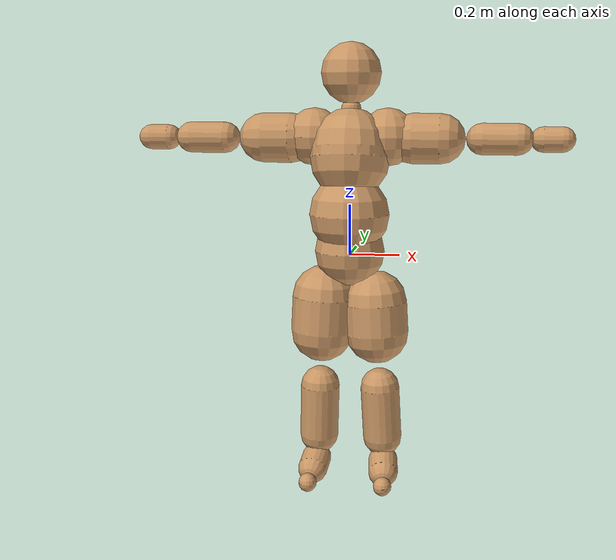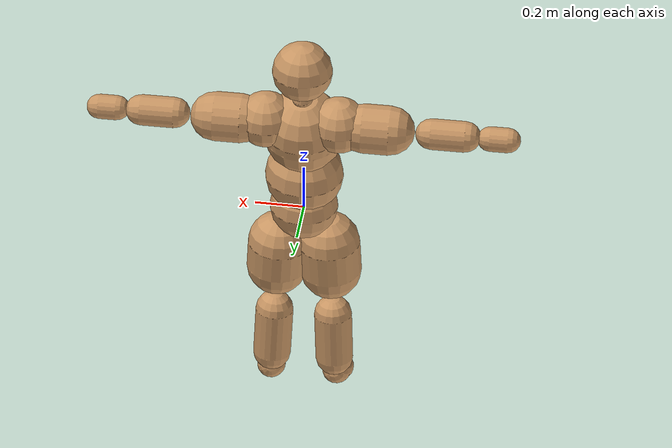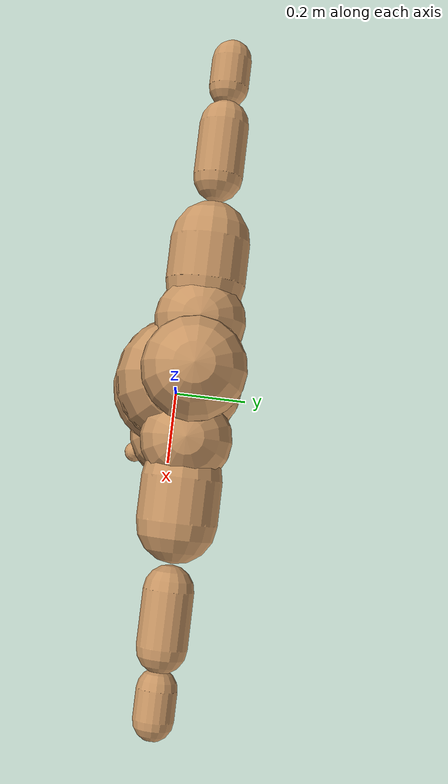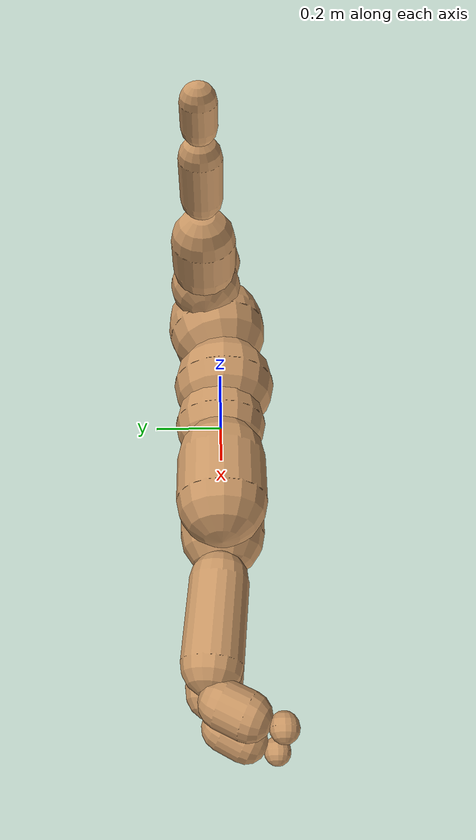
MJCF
<mujoco model="samurai">
  <compiler coordinate="local"/>
  <default>
    <joint damping="0.0" armature="0.01" stiffness="0.0" limited="true"/>
    <geom conaffinity="1" condim="3" contype="7" margin="0.001" rgba="0.8 0.6 .4 1"/>
  </default>
  <asset>
    <texture type="skybox" builtin="gradient" rgb1=".4 .5 .6" rgb2="0 0 0" width="100" height="100"/>
    <texture builtin="flat" height="1278" mark="cross" markrgb="1 1 1" name="texgeom" random="0.01" rgb1="0.8 0.6 0.4" rgb2="0.8 0.6 0.4" type="cube" width="127"/>
    <texture builtin="checker" height="100" name="texplane" rgb1="0 0 0" rgb2="0.8 0.8 0.8" type="2d" width="100"/>
    <material name="MatPlane" reflectance="0.5" shininess="1" specular="1" texrepeat="60 60" texture="texplane"/>
    <material name="geom" texture="texgeom" texuniform="true"/>
  </asset>
  <worldbody>
    <light cutoff="100" diffuse="1 1 1" dir="-0 0 -1.3" directional="true" exponent="1" pos="0 0 1.3" specular=".1 .1 .1"/>
    <body name='Hips' pos='0.0000 0.0000 0.0000'>
      <freejoint name='Hips'/>
      <geom type='capsule' size='0.1400' fromto='0.0000 0.0000 0.0140 0.0000 0.0000 0.0160' density='522' material='geom'/>
        <body name='Spine1' pos='0.0000 -0.0101 0.0998'>
          <joint name='Spine1_x' type='hinge' pos='0 0 0' axis='1.0000 0.0000 0.0000' stiffness='800' damping='80' armature='0.02' range='-48.0000 69.0000'/>
          <joint name='Spine1_y' type='hinge' pos='0 0 0' axis='0.0000 1.0000 0.0000' stiffness='800' damping='80' armature='0.02' range='-43.0000 44.0000'/>
          <joint name='Spine1_z' type='hinge' pos='0 0 0' axis='0.0000 0.0000 1.0000' stiffness='800' damping='80' armature='0.02' range='-43.0000 42.0000'/>
          <geom type='capsule' size='0.1600' fromto='0.0000 -0.0016 0.0633 0.0000 -0.0016 0.0653' density='522' material='geom'/>
            <body name='Spine2' pos='0.0000 -0.0038 0.1514'>
              <joint name='Spine2_x' type='hinge' pos='0 0 0' axis='1.0000 0.0000 0.0000' stiffness='800' damping='80' armature='0.02' range='-48.0000 64.0000'/>
              <joint name='Spine2_y' type='hinge' pos='0 0 0' axis='0.0000 1.0000 0.0000' stiffness='800' damping='80' armature='0.02' range='-44.0000 44.0000'/>
              <joint name='Spine2_z' type='hinge' pos='0 0 0' axis='0.0000 0.0000 1.0000' stiffness='800' damping='80' armature='0.02' range='-52.0000 52.0000'/>
              <geom type='capsule' size='0.1600' fromto='0.0000 0.0220 0.1321 0.0000 0.0283 0.1700' density='522' material='geom'/>
                <body name='Chest' pos='0.0000 0.0308 0.1850'>
                  <joint name='Chest_x' type='hinge' pos='0 0 0' axis='1.0000 0.0000 0.0000' stiffness='800' damping='80' armature='0.02' range='-37.0000 77.0000'/>
                  <joint name='Chest_y' type='hinge' pos='0 0 0' axis='0.0000 1.0000 0.0000' stiffness='800' damping='80' armature='0.02' range='-48.0000 52.0000'/>
                  <joint name='Chest_z' type='hinge' pos='0 0 0' axis='0.0000 0.0000 1.0000' stiffness='800' damping='80' armature='0.02' range='-54.0000 52.0000'/>
                  <geom type='capsule' size='0.1000' fromto='0.0000 0.0106 0.0345 0.0000 0.0106 0.0365' density='522' material='geom'/>
                    <body name='Neck1' pos='-0.0000 0.0202 0.1129'>
                      <joint name='Neck1_x' type='hinge' pos='0 0 0' axis='1.0000 0.0000 0.0000' stiffness='200' damping='20' armature='0.02' range='-84.0000 87.0000'/>
                      <joint name='Neck1_y' type='hinge' pos='0 0 0' axis='0.0000 1.0000 0.0000' stiffness='200' damping='20' armature='0.02' range='-67.0000 66.0000'/>
                      <joint name='Neck1_z' type='hinge' pos='0 0 0' axis='0.0000 0.0000 1.0000' stiffness='200' damping='20' armature='0.02' range='-65.0000 66.0000'/>
                      <geom type='capsule' size='0.0400' fromto='0.0000 0.0051 0.0231 0.0000 0.0051 0.0251' density='522' material='geom'/>
                        <body name='Neck2' pos='0.0000 0.0103 0.0482'>
                          <joint name='Neck2_x' type='hinge' pos='0 0 0' axis='1.0000 0.0000 0.0000' stiffness='200' damping='20' armature='0.02' range='-37.0000 33.0000'/>
                          <joint name='Neck2_y' type='hinge' pos='0 0 0' axis='0.0000 1.0000 0.0000' stiffness='200' damping='20' armature='0.02' range='-44.0000 45.0000'/>
                          <joint name='Neck2_z' type='hinge' pos='0 0 0' axis='0.0000 0.0000 1.0000' stiffness='200' damping='20' armature='0.02' range='-69.0000 69.0000'/>
                          <geom type='capsule' size='0.0400' fromto='-0.0000 -0.0013 0.0227 -0.0000 -0.0013 0.0247' density='522' material='geom'/>
                            <body name='Head' pos='-0.0000 -0.0026 0.0473'>
                              <joint name='Head_x' type='hinge' pos='0 0 0' axis='1.0000 0.0000 0.0000' stiffness='200' damping='20' armature='0.02' range='-99.0000 73.0000'/>
                              <joint name='Head_y' type='hinge' pos='0 0 0' axis='0.0000 1.0000 0.0000' stiffness='200' damping='20' armature='0.02' range='-55.0000 55.0000'/>
                              <joint name='Head_z' type='hinge' pos='0 0 0' axis='0.0000 0.0000 1.0000' stiffness='200' damping='20' armature='0.02' range='-99.0000 100.0000'/>
                              <geom type='capsule' size='0.1200' fromto='0.0000 -0.0000 0.0690 0.0000 -0.0000 0.0710' density='522' material='geom'/>
                            </body>
                        </body>
                    </body>
                    <body name='RightShoulder' pos='-0.0138 0.0219 0.0502'>
                      <joint name='RightShoulder_x' type='hinge' pos='0 0 0' axis='1.0000 0.0000 0.0000' stiffness='400' damping='40' armature='0.02' range='-43.0000 64.0000'/>
                      <joint name='RightShoulder_y' type='hinge' pos='0 0 0' axis='0.0000 1.0000 0.0000' stiffness='400' damping='40' armature='0.02' range='-72.0000 87.0000'/>
                      <joint name='RightShoulder_z' type='hinge' pos='0 0 0' axis='0.0000 0.0000 1.0000' stiffness='400' damping='40' armature='0.02' range='-62.0000 79.0000'/>
                      <geom type='capsule' size='0.1137' fromto='-0.1326 0.0062 -0.0215 -0.1326 0.0062 -0.0195' density='522' material='geom'/>
                        <body name='RightArm' pos='-0.1697 0.0079 -0.0262'>
                          <joint name='RightArm_x' type='hinge' pos='0 0 0' axis='1.0000 0.0000 0.0000' stiffness='400' damping='40' armature='0.02' range='-134.0000 108.0000'/>
                          <joint name='RightArm_y' type='hinge' pos='0 0 0' axis='0.0000 1.0000 0.0000' stiffness='400' damping='40' armature='0.02' range='-145.0000 92.0000'/>
                          <joint name='RightArm_z' type='hinge' pos='0 0 0' axis='0.0000 0.0000 1.0000' stiffness='400' damping='40' armature='0.02' range='-93.0000 164.0000'/>
                          <geom type='capsule' size='0.0994' fromto='-0.0592 0.0000 0.0000 -0.1686 0.0000 0.0000' density='522' material='geom'/>
                            <body name='RightForeArm' pos='-0.2680 0.0000 0.0000'>
                              <joint name='RightForeArm_x' type='hinge' pos='0 0 0' axis='1.0000 0.0000 0.0000' stiffness='300' damping='30' armature='0.02' range='-34.0000 40.0000'/>
                              <joint name='RightForeArm_y' type='hinge' pos='0 0 0' axis='0.0000 1.0000 0.0000' stiffness='300' damping='80' armature='0.02' range='-48.0000 65.0000'/>
                              <joint name='RightForeArm_z' type='hinge' pos='0 0 0' axis='0.0000 0.0000 1.0000' stiffness='300' damping='30' armature='0.02' range='-61.0000 178.0000'/>
                              <geom type='capsule' size='0.0622' fromto='-0.0636 0.0000 -0.0000 -0.2007 0.0000 -0.0000' density='522' material='geom'/>
                                <body name='RightHand' pos='-0.2630 0.0000 -0.0000'>
                                  <joint name='RightHand_x' type='hinge' pos='0 0 0' axis='1.0000 0.0000 0.0000' stiffness='200' damping='20' armature='0.02' range='-178.0000 152.0000'/>
                                  <joint name='RightHand_y' type='hinge' pos='0 0 0' axis='0.0000 1.0000 0.0000' stiffness='200' damping='20' armature='0.02' range='-73.0000 129.0000'/>
                                  <joint name='RightHand_z' type='hinge' pos='0 0 0' axis='0.0000 0.0000 1.0000' stiffness='200' damping='20' armature='0.02' range='-91.0000 97.0000'/>
                                  <geom type='capsule' size='0.0500' fromto='-0.0351 0.0000 0.0000 -0.1080 0.0000 0.0000' density='522' material='geom'/>
                                </body>
                            </body>
                        </body>
                    </body>
                    <body name='LeftShoulder' pos='0.0138 0.0219 0.0502'>
                      <joint name='LeftShoulder_x' type='hinge' pos='0 0 0' axis='-1.0000 0.0000 0.0000' stiffness='400' damping='40' armature='0.02' range='-44.0000 63.0000'/>
                      <joint name='LeftShoulder_y' type='hinge' pos='0 0 0' axis='0.0000 1.0000 0.0000' stiffness='400' damping='40' armature='0.02' range='-87.0000 72.0000'/>
                      <joint name='LeftShoulder_z' type='hinge' pos='0 0 0' axis='0.0000 0.0000 1.0000' stiffness='400' damping='40' armature='0.02' range='-75.0000 62.0000'/>
                      <geom type='capsule' size='0.1137' fromto='0.1328 0.0062 -0.0215 0.1328 0.0062 -0.0195' density='522' material='geom'/>
                        <body name='LeftArm' pos='0.1697 0.0079 -0.0262'>
                          <joint name='LeftArm_x' type='hinge' pos='0 0 0' axis='-1.0000 0.0000 0.0000' stiffness='400' damping='40' armature='0.02' range='-133.0000 107.0000'/>
                          <joint name='LeftArm_y' type='hinge' pos='0 0 0' axis='0.0000 1.0000 0.0000' stiffness='400' damping='40' armature='0.02' range='-92.0000 138.0000'/>
                          <joint name='LeftArm_z' type='hinge' pos='0 0 0' axis='0.0000 0.0000 1.0000' stiffness='400' damping='40' armature='0.02' range='-164.0000 95.0000'/>
                          <geom type='capsule' size='0.0996' fromto='0.0594 0.0000 0.0000 0.1684 0.0000 0.0000' density='522' material='geom'/>
                            <body name='LeftForeArm' pos='0.2680 0.0000 0.0000'>
                              <joint name='LeftForeArm_x' type='hinge' pos='0 0 0' axis='-1.0000 0.0000 0.0000' stiffness='300' damping='30' armature='0.02' range='-34.0000 40.0000'/>
                              <joint name='LeftForeArm_y' type='hinge' pos='0 0 0' axis='0.0000 1.0000 0.0000' stiffness='300' damping='30' armature='0.02' range='-63.0000 49.0000'/>
                              <joint name='LeftForeArm_z' type='hinge' pos='0 0 0' axis='0.0000 0.0000 1.0000' stiffness='300' damping='30' armature='0.02' range='-178.0000 62.0000'/>
                              <geom type='capsule' size='0.0622' fromto='0.0636 0.0000 -0.0000 0.2008 0.0000 -0.0000' density='522' material='geom'/>
                                <body name='LeftHand' pos='0.2630 0.0000 -0.0000'>
                                  <joint name='LeftHand_x' type='hinge' pos='0 0 0' axis='-1.0000 0.0000 0.0000' stiffness='200' damping='20' armature='0.02' range='-138.0000 115.0000'/>
                                  <joint name='LeftHand_y' type='hinge' pos='0 0 0' axis='0.0000 1.0000 0.0000' stiffness='200' damping='20' armature='0.02' range='-129.0000 72.0000'/>
                                  <joint name='LeftHand_z' type='hinge' pos='0 0 0' axis='0.0000 0.0000 1.0000' stiffness='200' damping='20' armature='0.02' range='-85.0000 75.0000'/>
                                  <geom type='capsule' size='0.0500' fromto='0.0351 0.0000 -0.0000 0.1080 0.0000 -0.0000' density='522' material='geom'/>
                                </body>
                            </body>
                        </body>
                    </body>
                </body>
            </body>
        </body>
        <body name='RightLeg' pos='-0.0962 -0.0026 -0.0227'>
          <joint name='RightLeg_x' type='hinge' pos='0 0 0' axis='1.0000 0.0000 0.0000' stiffness='500' damping='50' armature='0.02' range='-174.0000 84.0000'/>
          <joint name='RightLeg_y' type='hinge' pos='0 0 0' axis='0.0000 1.0000 0.0000' stiffness='500' damping='50' armature='0.02' range='-91.0000 98.0000'/>
          <joint name='RightLeg_z' type='hinge' pos='0 0 0' axis='0.0000 0.0000 1.0000' stiffness='500' damping='50' armature='0.02' range='-96.0000 80.0000'/>
          <geom type='capsule' size='0.1277' fromto='-0.0082 -0.0002 -0.1503 -0.0158 -0.0004 -0.2901' density='522' material='geom'/>
            <body name='RightShin' pos='-0.0228 -0.0005 -0.4176'>
              <joint name='RightShin_x' type='hinge' pos='0 0 0' axis='1.0000 0.0000 0.0000' stiffness='500' damping='50' armature='0.02' range='-67.0000 178.0000'/>
              <joint name='RightShin_y' type='hinge' pos='0 0 0' axis='0.0000 1.0000 0.0000' stiffness='500' damping='50' armature='0.02' range='-45.0000 37.0000'/>
              <joint name='RightShin_z' type='hinge' pos='0 0 0' axis='0.0000 0.0000 1.0000' stiffness='500' damping='50' armature='0.02' range='-40.0000 34.0000'/>
              <geom type='capsule' size='0.0790' fromto='-0.0046 0.0093 -0.1095 -0.0137 0.0279 -0.3269' density='522' material='geom'/>
                <body name='RightFoot' pos='-0.0169 0.0346 -0.4055'>
                  <joint name='RightFoot_x' type='hinge' pos='0 0 0' axis='1.0000 0.0000 0.0000' stiffness='100' damping='20' armature='0.02' range='-86.0000 111.0000'/>
                  <joint name='RightFoot_y' type='hinge' pos='0 0 0' axis='0.0000 1.0000 0.0000' stiffness='100' damping='20' armature='0.02' range='-85.0000 71.0000'/>
                  <joint name='RightFoot_z' type='hinge' pos='0 0 0' axis='0.0000 0.0000 1.0000' stiffness='100' damping='20' armature='0.02' range='-95.0000 85.0000'/>
                  <geom type='capsule' size='0.0600' fromto='-0.0036 -0.0321 -0.0161 -0.0103 -0.0910 -0.0456' density='522' material='geom'/>
                    <body name='RightToeBase' pos='-0.0163 -0.1440 -0.0722'>
                      <joint name='RightToeBase_x' type='hinge' pos='0 0 0' axis='1.0000 0.0000 0.0000' stiffness='60' damping='12' armature='0.02' range='-100.0000 49.0000'/>
                      <joint name='RightToeBase_y' type='hinge' pos='0 0 0' axis='0.0000 1.0000 0.0000' stiffness='60' damping='12' armature='0.02' range='-43.0000 40.0000'/>
                      <joint name='RightToeBase_z' type='hinge' pos='0 0 0' axis='0.0000 0.0000 1.0000' stiffness='60' damping='12' armature='0.02' range='-37.0000 40.0000'/>
                      <geom type='capsule' size='0.0366' fromto='-0.0000 -0.0306 -0.0010 -0.0000 -0.0306 0.0010' density='522' material='geom'/>
                    </body>
                </body>
            </body>
        </body>
        <body name='LeftLeg' pos='0.0962 -0.0025 -0.0227'>
          <joint name='LeftLeg_x' type='hinge' pos='0 0 0' axis='-1.0000 0.0000 0.0000' stiffness='500' damping='50' armature='0.02' range='-174.0000 85.0000'/>
          <joint name='LeftLeg_y' type='hinge' pos='0 0 0' axis='0.0000 1.0000 0.0000' stiffness='500' damping='50' armature='0.02' range='-98.0000 83.0000'/>
          <joint name='LeftLeg_z' type='hinge' pos='0 0 0' axis='0.0000 0.0000 1.0000' stiffness='500' damping='50' armature='0.02' range='-79.0000 101.0000'/>
          <geom type='capsule' size='0.1273' fromto='0.0092 -0.0002 -0.1681 0.0159 -0.0004 -0.2905' density='522' material='geom'/>
            <body name='LeftShin' pos='0.0228 -0.0005 -0.4176'>
              <joint name='LeftShin_x' type='hinge' pos='0 0 0' axis='-1.0000 0.0000 0.0000' stiffness='500' damping='50' armature='0.02' range='-66.0000 178.0000'/>
              <joint name='LeftShin_y' type='hinge' pos='0 0 0' axis='0.0000 1.0000 0.0000' stiffness='500' damping='50' armature='0.02' range='-37.0000 45.0000'/>
              <joint name='LeftShin_z' type='hinge' pos='0 0 0' axis='0.0000 0.0000 1.0000' stiffness='500' damping='50' armature='0.02' range='-34.0000 40.0000'/>
              <geom type='capsule' size='0.0789' fromto='0.0046 0.0093 -0.1090 0.0137 0.0279 -0.3270' density='522' material='geom'/>
                <body name='LeftFoot' pos='0.0169 0.0346 -0.4055'>
                  <joint name='LeftFoot_x' type='hinge' pos='0 0 0' axis='-1.0000 0.0000 0.0000' stiffness='100' damping='20' armature='0.02' range='-85.0000 111.0000'/>
                  <joint name='LeftFoot_y' type='hinge' pos='0 0 0' axis='0.0000 1.0000 0.0000' stiffness='100' damping='20' armature='0.02' range='-74.0000 86.0000'/>
                  <joint name='LeftFoot_z' type='hinge' pos='0 0 0' axis='0.0000 0.0000 1.0000' stiffness='100' damping='20' armature='0.02' range='-90.0000 95.0000'/>
                  <geom type='capsule' size='0.0600' fromto='0.0036 -0.0322 -0.0162 0.0103 -0.0911 -0.0457' density='522' material='geom'/>
                    <body name='LeftToeBase' pos='0.0163 -0.1440 -0.0722'>
                      <joint name='LeftToeBase_x' type='hinge' pos='0 0 0' axis='-1.0000 0.0000 0.0000' stiffness='60' damping='12' armature='0.02' range='-100.0000 49.0000'/>
                      <joint name='LeftToeBase_y' type='hinge' pos='0 0 0' axis='0.0000 1.0000 0.0000' stiffness='60' damping='12' armature='0.02' range='-40.0000 43.0000'/>
                      <joint name='LeftToeBase_z' type='hinge' pos='0 0 0' axis='0.0000 0.0000 1.0000' stiffness='60' damping='12' armature='0.02' range='-40.0000 37.0000'/>
                      <geom type='capsule' size='0.0366' fromto='-0.0000 -0.0307 -0.0010 -0.0000 -0.0307 0.0010' density='522' material='geom'/>
                    </body>
                </body>
            </body>
        </body>
    </body>
  </worldbody>
  <actuator>
      <motor name='Spine1_x' joint='Spine1_x' gear='200'/>
      <motor name='Spine1_y' joint='Spine1_y' gear='200'/>
      <motor name='Spine1_z' joint='Spine1_z' gear='200'/>
      <motor name='Spine2_x' joint='Spine2_x' gear='200'/>
      <motor name='Spine2_y' joint='Spine2_y' gear='200'/>
      <motor name='Spine2_z' joint='Spine2_z' gear='200'/>
      <motor name='Chest_x' joint='Chest_x' gear='200'/>
      <motor name='Chest_y' joint='Chest_y' gear='200'/>
      <motor name='Chest_z' joint='Chest_z' gear='200'/>
      <motor name='Neck1_x' joint='Neck1_x' gear='100'/>
      <motor name='Neck1_y' joint='Neck1_y' gear='100'/>
      <motor name='Neck1_z' joint='Neck1_z' gear='100'/>
      <motor name='Neck2_x' joint='Neck2_x' gear='100'/>
      <motor name='Neck2_y' joint='Neck2_y' gear='100'/>
      <motor name='Neck2_z' joint='Neck2_z' gear='100'/>
      <motor name='Head_x' joint='Head_x' gear='100'/>
      <motor name='Head_y' joint='Head_y' gear='100'/>
      <motor name='Head_z' joint='Head_z' gear='100'/>
      <motor name='RightShoulder_x' joint='RightShoulder_x' gear='200'/>
      <motor name='RightShoulder_y' joint='RightShoulder_y' gear='200'/>
      <motor name='RightShoulder_z' joint='RightShoulder_z' gear='200'/>
      <motor name='RightArm_x' joint='RightArm_x' gear='200'/>
      <motor name='RightArm_y' joint='RightArm_y' gear='200'/>
      <motor name='RightArm_z' joint='RightArm_z' gear='200'/>
      <motor name='RightForeArm_x' joint='RightForeArm_x' gear='100'/>
      <motor name='RightForeArm_y' joint='RightForeArm_y' gear='100'/>
      <motor name='RightForeArm_z' joint='RightForeArm_z' gear='100'/>
      <motor name='RightHand_x' joint='RightHand_x' gear='70'/>
      <motor name='RightHand_y' joint='RightHand_y' gear='70'/>
      <motor name='RightHand_z' joint='RightHand_z' gear='70'/>
      <motor name='LeftShoulder_x' joint='LeftShoulder_x' gear='200'/>
      <motor name='LeftShoulder_y' joint='LeftShoulder_y' gear='200'/>
      <motor name='LeftShoulder_z' joint='LeftShoulder_z' gear='200'/>
      <motor name='LeftArm_x' joint='LeftArm_x' gear='200'/>
      <motor name='LeftArm_y' joint='LeftArm_y' gear='200'/>
      <motor name='LeftArm_z' joint='LeftArm_z' gear='200'/>
      <motor name='LeftForeArm_x' joint='LeftForeArm_x' gear='100'/>
      <motor name='LeftForeArm_y' joint='LeftForeArm_y' gear='100'/>
      <motor name='LeftForeArm_z' joint='LeftForeArm_z' gear='100'/>
      <motor name='LeftHand_x' joint='LeftHand_x' gear='70'/>
      <motor name='LeftHand_y' joint='LeftHand_y' gear='70'/>
      <motor name='LeftHand_z' joint='LeftHand_z' gear='70'/>
      <motor name='RightLeg_x' joint='RightLeg_x' gear='250'/>
      <motor name='RightLeg_y' joint='RightLeg_y' gear='250'/>
      <motor name='RightLeg_z' joint='RightLeg_z' gear='250'/>
      <motor name='RightShin_x' joint='RightShin_x' gear='200'/>
      <motor name='RightShin_y' joint='RightShin_y' gear='200'/>
      <motor name='RightShin_z' joint='RightShin_z' gear='200'/>
      <motor name='RightFoot_x' joint='RightFoot_x' gear='100'/>
      <motor name='RightFoot_y' joint='RightFoot_y' gear='100'/>
      <motor name='RightFoot_z' joint='RightFoot_z' gear='100'/>
      <motor name='RightToeBase_x' joint='RightToeBase_x' gear='50'/>
      <motor name='RightToeBase_y' joint='RightToeBase_y' gear='50'/>
      <motor name='RightToeBase_z' joint='RightToeBase_z' gear='50'/>
      <motor name='LeftLeg_x' joint='LeftLeg_x' gear='250'/>
      <motor name='LeftLeg_y' joint='LeftLeg_y' gear='250'/>
      <motor name='LeftLeg_z' joint='LeftLeg_z' gear='250'/>
      <motor name='LeftShin_x' joint='LeftShin_x' gear='200'/>
      <motor name='LeftShin_y' joint='LeftShin_y' gear='200'/>
      <motor name='LeftShin_z' joint='LeftShin_z' gear='200'/>
      <motor name='LeftFoot_x' joint='LeftFoot_x' gear='100'/>
      <motor name='LeftFoot_y' joint='LeftFoot_y' gear='100'/>
      <motor name='LeftFoot_z' joint='LeftFoot_z' gear='100'/>
      <motor name='LeftToeBase_x' joint='LeftToeBase_x' gear='50'/>
      <motor name='LeftToeBase_y' joint='LeftToeBase_y' gear='50'/>
      <motor name='LeftToeBase_z' joint='LeftToeBase_z' gear='50'/>
  </actuator>
  <contact>
      <exclude body1='Hips' body2='Spine2'/>
      <exclude body1='Spine1' body2='Chest'/>
      <exclude body1='Spine2' body2='Neck1'/>
      <exclude body1='Chest' body2='Neck2'/>
      <exclude body1='Neck1' body2='Head'/>
      <exclude body1='Spine1' body2='Neck1'/>
      <exclude body1='Spine2' body2='Neck2'/>
      <exclude body1='Chest' body2='Head'/>
      <exclude body1='RightArm' body2='Chest'/>
      <exclude body1='LeftArm' body2='Chest'/>
      <exclude body1='RightArm' body2='Spine2'/>
      <exclude body1='LeftArm' body2='Spine2'/>
  </contact>
  <sensor/>
  <size njmax='700' nconmax='700'/>
</mujoco>
